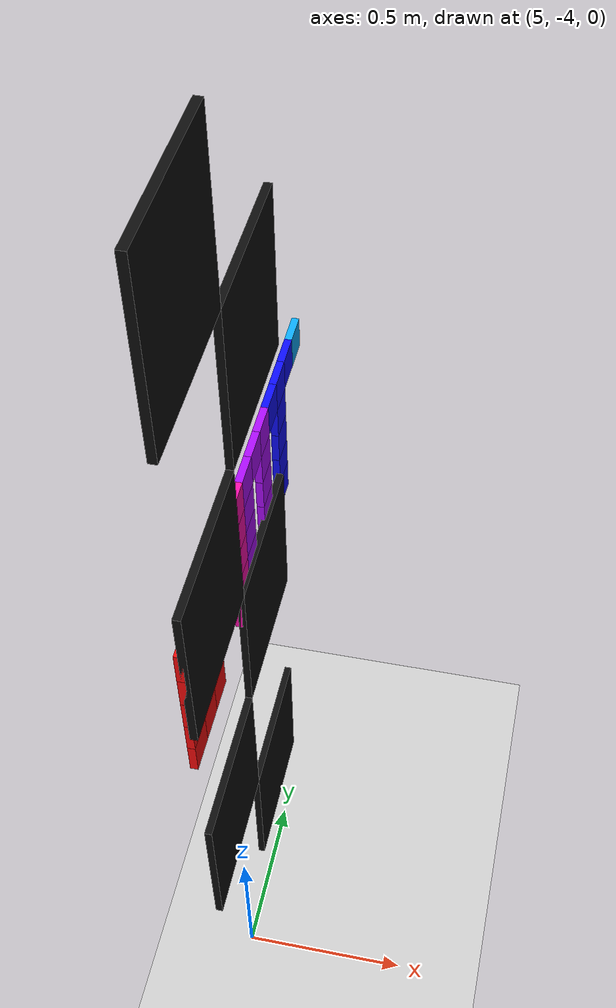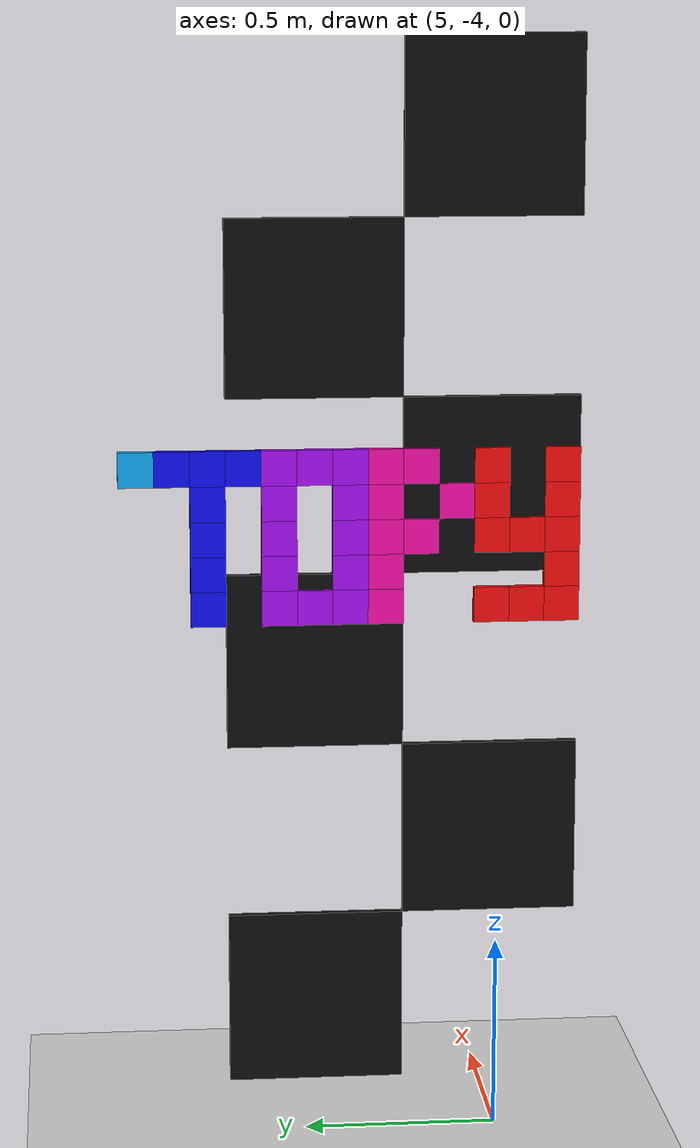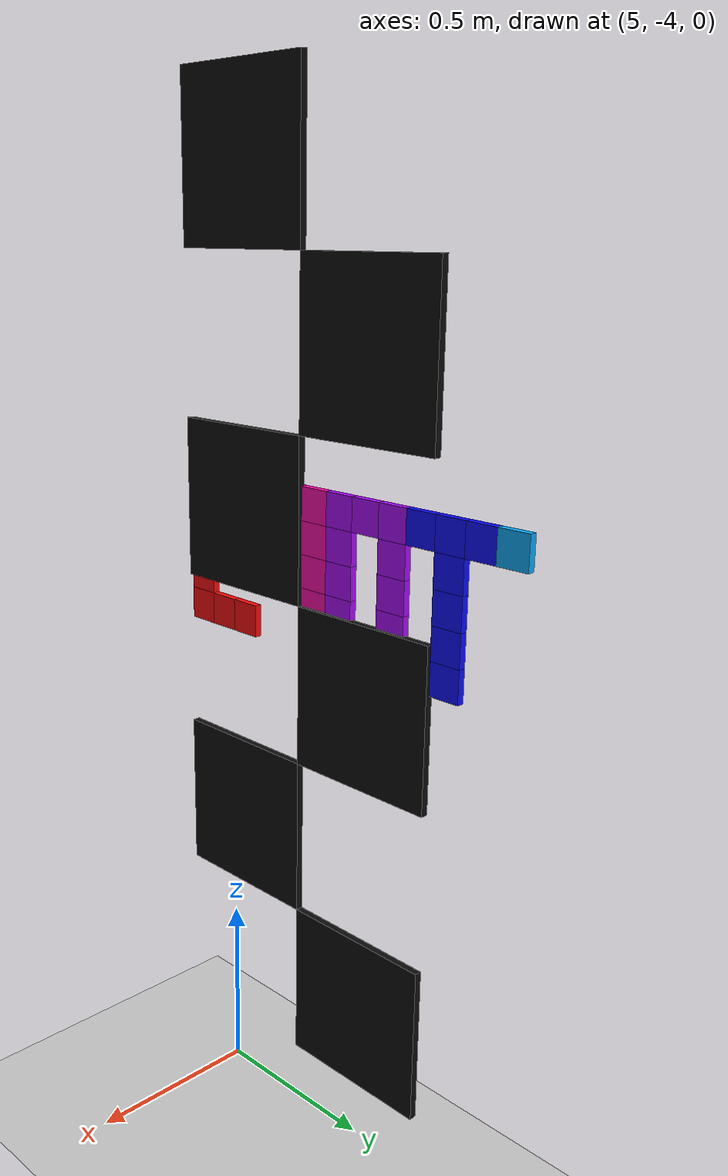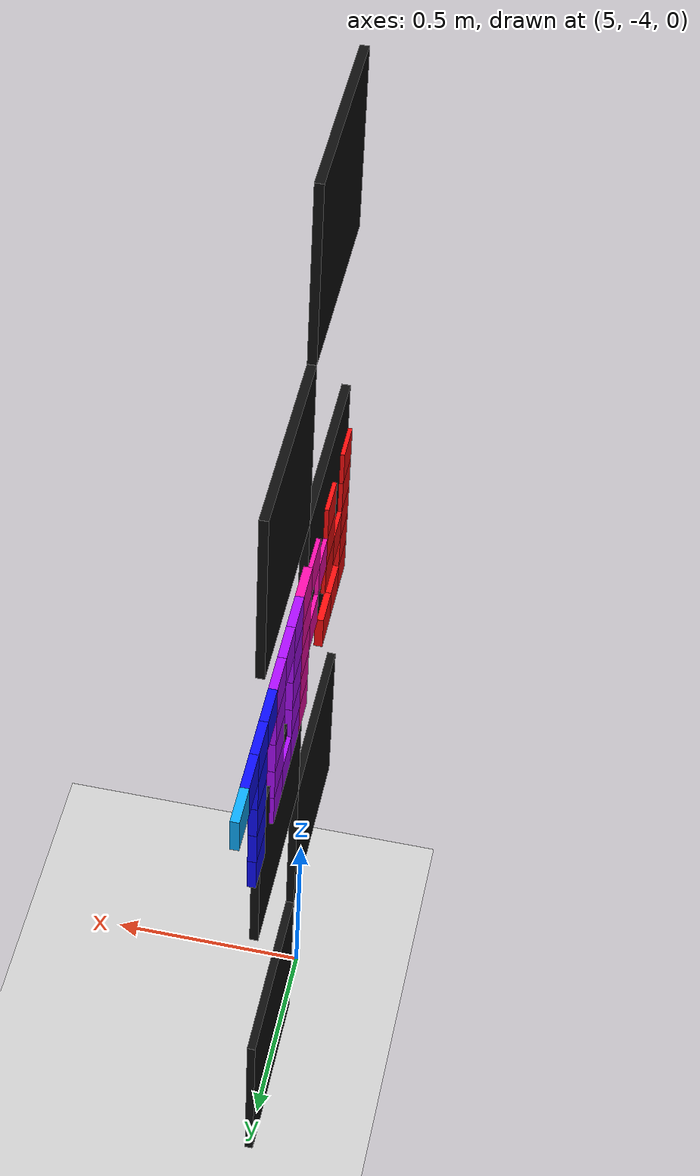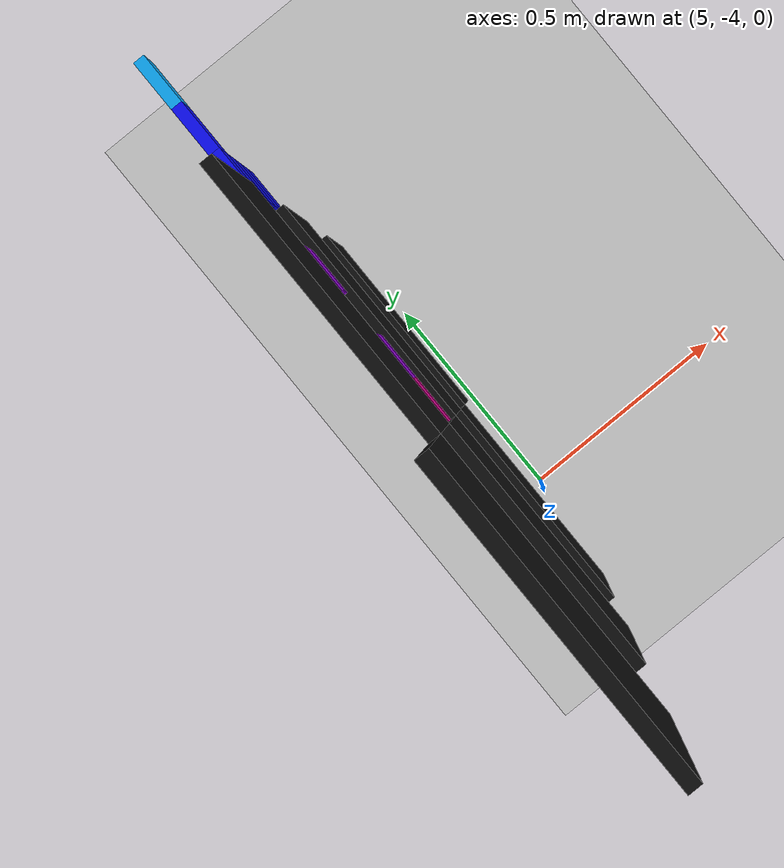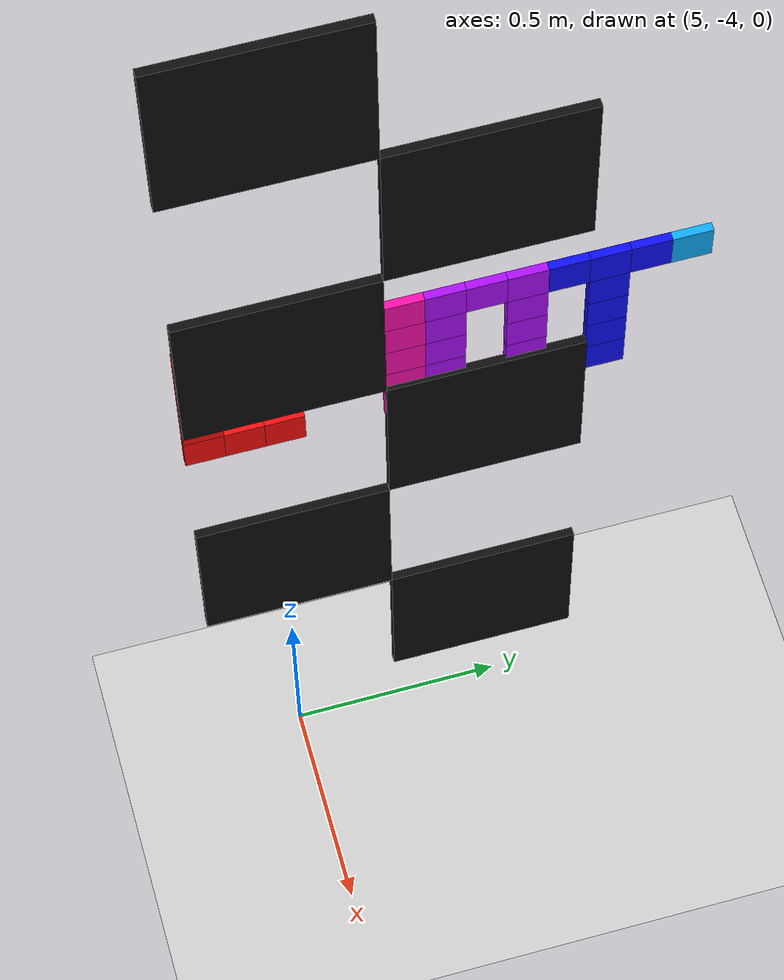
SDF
<sdf version="1.6">
 <world name="collab_workshop">
  <include><uri>model://ground_plane</uri></include>
  <include><uri>model://sun</uri></include>
  <model name="east_a_tile_0_1">
   <pose>4.98 -3.525 0.3749999999999999 0 0 0.0</pose>
   <static>true</static>
   <link name="link">
    <visual name="visual">
     <geometry><box><size>0.02 0.45 0.45</size></box></geometry>
     <material><ambient>0.05 0.05 0.05 1</ambient><diffuse>0.05 0.05 0.05 1</diffuse></material>
    </visual>
   </link>
  </model>
  <model name="east_a_tile_1_0">
   <pose>4.98 -3.975 0.8249999999999998 0 0 0.0</pose>
   <static>true</static>
   <link name="link">
    <visual name="visual">
     <geometry><box><size>0.02 0.45 0.45</size></box></geometry>
     <material><ambient>0.05 0.05 0.05 1</ambient><diffuse>0.05 0.05 0.05 1</diffuse></material>
    </visual>
   </link>
  </model>
  <model name="east_a_tile_2_1">
   <pose>4.98 -3.525 1.275 0 0 0.0</pose>
   <static>true</static>
   <link name="link">
    <visual name="visual">
     <geometry><box><size>0.02 0.45 0.45</size></box></geometry>
     <material><ambient>0.05 0.05 0.05 1</ambient><diffuse>0.05 0.05 0.05 1</diffuse></material>
    </visual>
   </link>
  </model>
  <model name="east_a_tile_3_0">
   <pose>4.98 -3.975 1.725 0 0 0.0</pose>
   <static>true</static>
   <link name="link">
    <visual name="visual">
     <geometry><box><size>0.02 0.45 0.45</size></box></geometry>
     <material><ambient>0.05 0.05 0.05 1</ambient><diffuse>0.05 0.05 0.05 1</diffuse></material>
    </visual>
   </link>
  </model>
  <model name="east_a_tile_4_1">
   <pose>4.98 -3.525 2.175 0 0 0.0</pose>
   <static>true</static>
   <link name="link">
    <visual name="visual">
     <geometry><box><size>0.02 0.45 0.45</size></box></geometry>
     <material><ambient>0.05 0.05 0.05 1</ambient><diffuse>0.05 0.05 0.05 1</diffuse></material>
    </visual>
   </link>
  </model>
  <model name="east_a_tile_5_0">
   <pose>4.98 -3.975 2.625 0 0 0.0</pose>
   <static>true</static>
   <link name="link">
    <visual name="visual">
     <geometry><box><size>0.02 0.45 0.45</size></box></geometry>
     <material><ambient>0.05 0.05 0.05 1</ambient><diffuse>0.05 0.05 0.05 1</diffuse></material>
    </visual>
   </link>
  </model>
  <model name="lab_letter_5_0_2">
   <pose>4.97 -3.075 1.775 0 0 0.0</pose>
   <static>true</static>
   <link name="link">
    <visual name="visual">
     <geometry><box><size>0.02 0.09 0.09</size></box></geometry>
     <material><ambient>0.049 0.67 0.98 1</ambient><diffuse>0.049 0.67 0.98 1</diffuse></material>
    </visual>
   </link>
  </model>
  <model name="lab_letter_6_0_0">
   <pose>4.97 -3.165 1.775 0 0 0.0</pose>
   <static>true</static>
   <link name="link">
    <visual name="visual">
     <geometry><box><size>0.02 0.09 0.09</size></box></geometry>
     <material><ambient>0.049 0.049 0.98 1</ambient><diffuse>0.049 0.049 0.98 1</diffuse></material>
    </visual>
   </link>
  </model>
  <model name="lab_letter_6_0_1">
   <pose>4.97 -3.255 1.775 0 0 0.0</pose>
   <static>true</static>
   <link name="link">
    <visual name="visual">
     <geometry><box><size>0.02 0.09 0.09</size></box></geometry>
     <material><ambient>0.049 0.049 0.98 1</ambient><diffuse>0.049 0.049 0.98 1</diffuse></material>
    </visual>
   </link>
  </model>
  <model name="lab_letter_6_0_2">
   <pose>4.97 -3.3449999999999998 1.775 0 0 0.0</pose>
   <static>true</static>
   <link name="link">
    <visual name="visual">
     <geometry><box><size>0.02 0.09 0.09</size></box></geometry>
     <material><ambient>0.049 0.049 0.98 1</ambient><diffuse>0.049 0.049 0.98 1</diffuse></material>
    </visual>
   </link>
  </model>
  <model name="lab_letter_6_1_1">
   <pose>4.97 -3.255 1.685 0 0 0.0</pose>
   <static>true</static>
   <link name="link">
    <visual name="visual">
     <geometry><box><size>0.02 0.09 0.09</size></box></geometry>
     <material><ambient>0.049 0.049 0.98 1</ambient><diffuse>0.049 0.049 0.98 1</diffuse></material>
    </visual>
   </link>
  </model>
  <model name="lab_letter_6_2_1">
   <pose>4.97 -3.255 1.595 0 0 0.0</pose>
   <static>true</static>
   <link name="link">
    <visual name="visual">
     <geometry><box><size>0.02 0.09 0.09</size></box></geometry>
     <material><ambient>0.049 0.049 0.98 1</ambient><diffuse>0.049 0.049 0.98 1</diffuse></material>
    </visual>
   </link>
  </model>
  <model name="lab_letter_6_3_1">
   <pose>4.97 -3.255 1.505 0 0 0.0</pose>
   <static>true</static>
   <link name="link">
    <visual name="visual">
     <geometry><box><size>0.02 0.09 0.09</size></box></geometry>
     <material><ambient>0.049 0.049 0.98 1</ambient><diffuse>0.049 0.049 0.98 1</diffuse></material>
    </visual>
   </link>
  </model>
  <model name="lab_letter_6_4_1">
   <pose>4.97 -3.255 1.415 0 0 0.0</pose>
   <static>true</static>
   <link name="link">
    <visual name="visual">
     <geometry><box><size>0.02 0.09 0.09</size></box></geometry>
     <material><ambient>0.049 0.049 0.98 1</ambient><diffuse>0.049 0.049 0.98 1</diffuse></material>
    </visual>
   </link>
  </model>
  <model name="lab_letter_7_0_0">
   <pose>4.97 -3.435 1.775 0 0 0.0</pose>
   <static>true</static>
   <link name="link">
    <visual name="visual">
     <geometry><box><size>0.02 0.09 0.09</size></box></geometry>
     <material><ambient>0.67 0.049 0.98 1</ambient><diffuse>0.67 0.049 0.98 1</diffuse></material>
    </visual>
   </link>
  </model>
  <model name="lab_letter_7_0_1">
   <pose>4.97 -3.5250000000000004 1.775 0 0 0.0</pose>
   <static>true</static>
   <link name="link">
    <visual name="visual">
     <geometry><box><size>0.02 0.09 0.09</size></box></geometry>
     <material><ambient>0.67 0.049 0.98 1</ambient><diffuse>0.67 0.049 0.98 1</diffuse></material>
    </visual>
   </link>
  </model>
  <model name="lab_letter_7_0_2">
   <pose>4.97 -3.615 1.775 0 0 0.0</pose>
   <static>true</static>
   <link name="link">
    <visual name="visual">
     <geometry><box><size>0.02 0.09 0.09</size></box></geometry>
     <material><ambient>0.67 0.049 0.98 1</ambient><diffuse>0.67 0.049 0.98 1</diffuse></material>
    </visual>
   </link>
  </model>
  <model name="lab_letter_7_1_0">
   <pose>4.97 -3.435 1.685 0 0 0.0</pose>
   <static>true</static>
   <link name="link">
    <visual name="visual">
     <geometry><box><size>0.02 0.09 0.09</size></box></geometry>
     <material><ambient>0.67 0.049 0.98 1</ambient><diffuse>0.67 0.049 0.98 1</diffuse></material>
    </visual>
   </link>
  </model>
  <model name="lab_letter_7_1_2">
   <pose>4.97 -3.615 1.685 0 0 0.0</pose>
   <static>true</static>
   <link name="link">
    <visual name="visual">
     <geometry><box><size>0.02 0.09 0.09</size></box></geometry>
     <material><ambient>0.67 0.049 0.98 1</ambient><diffuse>0.67 0.049 0.98 1</diffuse></material>
    </visual>
   </link>
  </model>
  <model name="lab_letter_7_2_0">
   <pose>4.97 -3.435 1.595 0 0 0.0</pose>
   <static>true</static>
   <link name="link">
    <visual name="visual">
     <geometry><box><size>0.02 0.09 0.09</size></box></geometry>
     <material><ambient>0.67 0.049 0.98 1</ambient><diffuse>0.67 0.049 0.98 1</diffuse></material>
    </visual>
   </link>
  </model>
  <model name="lab_letter_7_2_2">
   <pose>4.97 -3.615 1.595 0 0 0.0</pose>
   <static>true</static>
   <link name="link">
    <visual name="visual">
     <geometry><box><size>0.02 0.09 0.09</size></box></geometry>
     <material><ambient>0.67 0.049 0.98 1</ambient><diffuse>0.67 0.049 0.98 1</diffuse></material>
    </visual>
   </link>
  </model>
  <model name="lab_letter_7_3_0">
   <pose>4.97 -3.435 1.505 0 0 0.0</pose>
   <static>true</static>
   <link name="link">
    <visual name="visual">
     <geometry><box><size>0.02 0.09 0.09</size></box></geometry>
     <material><ambient>0.67 0.049 0.98 1</ambient><diffuse>0.67 0.049 0.98 1</diffuse></material>
    </visual>
   </link>
  </model>
  <model name="lab_letter_7_3_2">
   <pose>4.97 -3.615 1.505 0 0 0.0</pose>
   <static>true</static>
   <link name="link">
    <visual name="visual">
     <geometry><box><size>0.02 0.09 0.09</size></box></geometry>
     <material><ambient>0.67 0.049 0.98 1</ambient><diffuse>0.67 0.049 0.98 1</diffuse></material>
    </visual>
   </link>
  </model>
  <model name="lab_letter_7_4_0">
   <pose>4.97 -3.435 1.415 0 0 0.0</pose>
   <static>true</static>
   <link name="link">
    <visual name="visual">
     <geometry><box><size>0.02 0.09 0.09</size></box></geometry>
     <material><ambient>0.67 0.049 0.98 1</ambient><diffuse>0.67 0.049 0.98 1</diffuse></material>
    </visual>
   </link>
  </model>
  <model name="lab_letter_7_4_1">
   <pose>4.97 -3.5250000000000004 1.415 0 0 0.0</pose>
   <static>true</static>
   <link name="link">
    <visual name="visual">
     <geometry><box><size>0.02 0.09 0.09</size></box></geometry>
     <material><ambient>0.67 0.049 0.98 1</ambient><diffuse>0.67 0.049 0.98 1</diffuse></material>
    </visual>
   </link>
  </model>
  <model name="lab_letter_7_4_2">
   <pose>4.97 -3.615 1.415 0 0 0.0</pose>
   <static>true</static>
   <link name="link">
    <visual name="visual">
     <geometry><box><size>0.02 0.09 0.09</size></box></geometry>
     <material><ambient>0.67 0.049 0.98 1</ambient><diffuse>0.67 0.049 0.98 1</diffuse></material>
    </visual>
   </link>
  </model>
  <model name="lab_letter_8_0_0">
   <pose>4.97 -3.705 1.775 0 0 0.0</pose>
   <static>true</static>
   <link name="link">
    <visual name="visual">
     <geometry><box><size>0.02 0.09 0.09</size></box></geometry>
     <material><ambient>0.98 0.049 0.67 1</ambient><diffuse>0.98 0.049 0.67 1</diffuse></material>
    </visual>
   </link>
  </model>
  <model name="lab_letter_8_0_1">
   <pose>4.97 -3.795 1.775 0 0 0.0</pose>
   <static>true</static>
   <link name="link">
    <visual name="visual">
     <geometry><box><size>0.02 0.09 0.09</size></box></geometry>
     <material><ambient>0.98 0.049 0.67 1</ambient><diffuse>0.98 0.049 0.67 1</diffuse></material>
    </visual>
   </link>
  </model>
  <model name="lab_letter_8_1_0">
   <pose>4.97 -3.705 1.685 0 0 0.0</pose>
   <static>true</static>
   <link name="link">
    <visual name="visual">
     <geometry><box><size>0.02 0.09 0.09</size></box></geometry>
     <material><ambient>0.98 0.049 0.67 1</ambient><diffuse>0.98 0.049 0.67 1</diffuse></material>
    </visual>
   </link>
  </model>
  <model name="lab_letter_8_1_2">
   <pose>4.97 -3.8850000000000007 1.685 0 0 0.0</pose>
   <static>true</static>
   <link name="link">
    <visual name="visual">
     <geometry><box><size>0.02 0.09 0.09</size></box></geometry>
     <material><ambient>0.98 0.049 0.67 1</ambient><diffuse>0.98 0.049 0.67 1</diffuse></material>
    </visual>
   </link>
  </model>
  <model name="lab_letter_8_2_0">
   <pose>4.97 -3.705 1.595 0 0 0.0</pose>
   <static>true</static>
   <link name="link">
    <visual name="visual">
     <geometry><box><size>0.02 0.09 0.09</size></box></geometry>
     <material><ambient>0.98 0.049 0.67 1</ambient><diffuse>0.98 0.049 0.67 1</diffuse></material>
    </visual>
   </link>
  </model>
  <model name="lab_letter_8_2_1">
   <pose>4.97 -3.795 1.595 0 0 0.0</pose>
   <static>true</static>
   <link name="link">
    <visual name="visual">
     <geometry><box><size>0.02 0.09 0.09</size></box></geometry>
     <material><ambient>0.98 0.049 0.67 1</ambient><diffuse>0.98 0.049 0.67 1</diffuse></material>
    </visual>
   </link>
  </model>
  <model name="lab_letter_8_3_0">
   <pose>4.97 -3.705 1.505 0 0 0.0</pose>
   <static>true</static>
   <link name="link">
    <visual name="visual">
     <geometry><box><size>0.02 0.09 0.09</size></box></geometry>
     <material><ambient>0.98 0.049 0.67 1</ambient><diffuse>0.98 0.049 0.67 1</diffuse></material>
    </visual>
   </link>
  </model>
  <model name="lab_letter_8_4_0">
   <pose>4.97 -3.705 1.415 0 0 0.0</pose>
   <static>true</static>
   <link name="link">
    <visual name="visual">
     <geometry><box><size>0.02 0.09 0.09</size></box></geometry>
     <material><ambient>0.98 0.049 0.67 1</ambient><diffuse>0.98 0.049 0.67 1</diffuse></material>
    </visual>
   </link>
  </model>
  <model name="lab_letter_9_0_0">
   <pose>4.97 -3.9749999999999996 1.775 0 0 0.0</pose>
   <static>true</static>
   <link name="link">
    <visual name="visual">
     <geometry><box><size>0.02 0.09 0.09</size></box></geometry>
     <material><ambient>0.98 0.049 0.049 1</ambient><diffuse>0.98 0.049 0.049 1</diffuse></material>
    </visual>
   </link>
  </model>
  <model name="lab_letter_9_0_2">
   <pose>4.97 -4.155 1.775 0 0 0.0</pose>
   <static>true</static>
   <link name="link">
    <visual name="visual">
     <geometry><box><size>0.02 0.09 0.09</size></box></geometry>
     <material><ambient>0.98 0.049 0.049 1</ambient><diffuse>0.98 0.049 0.049 1</diffuse></material>
    </visual>
   </link>
  </model>
  <model name="lab_letter_9_1_0">
   <pose>4.97 -3.9749999999999996 1.685 0 0 0.0</pose>
   <static>true</static>
   <link name="link">
    <visual name="visual">
     <geometry><box><size>0.02 0.09 0.09</size></box></geometry>
     <material><ambient>0.98 0.049 0.049 1</ambient><diffuse>0.98 0.049 0.049 1</diffuse></material>
    </visual>
   </link>
  </model>
  <model name="lab_letter_9_1_2">
   <pose>4.97 -4.155 1.685 0 0 0.0</pose>
   <static>true</static>
   <link name="link">
    <visual name="visual">
     <geometry><box><size>0.02 0.09 0.09</size></box></geometry>
     <material><ambient>0.98 0.049 0.049 1</ambient><diffuse>0.98 0.049 0.049 1</diffuse></material>
    </visual>
   </link>
  </model>
  <model name="lab_letter_9_2_0">
   <pose>4.97 -3.9749999999999996 1.595 0 0 0.0</pose>
   <static>true</static>
   <link name="link">
    <visual name="visual">
     <geometry><box><size>0.02 0.09 0.09</size></box></geometry>
     <material><ambient>0.98 0.049 0.049 1</ambient><diffuse>0.98 0.049 0.049 1</diffuse></material>
    </visual>
   </link>
  </model>
  <model name="lab_letter_9_2_1">
   <pose>4.97 -4.0649999999999995 1.595 0 0 0.0</pose>
   <static>true</static>
   <link name="link">
    <visual name="visual">
     <geometry><box><size>0.02 0.09 0.09</size></box></geometry>
     <material><ambient>0.98 0.049 0.049 1</ambient><diffuse>0.98 0.049 0.049 1</diffuse></material>
    </visual>
   </link>
  </model>
  <model name="lab_letter_9_2_2">
   <pose>4.97 -4.155 1.595 0 0 0.0</pose>
   <static>true</static>
   <link name="link">
    <visual name="visual">
     <geometry><box><size>0.02 0.09 0.09</size></box></geometry>
     <material><ambient>0.98 0.049 0.049 1</ambient><diffuse>0.98 0.049 0.049 1</diffuse></material>
    </visual>
   </link>
  </model>
  <model name="lab_letter_9_3_2">
   <pose>4.97 -4.155 1.505 0 0 0.0</pose>
   <static>true</static>
   <link name="link">
    <visual name="visual">
     <geometry><box><size>0.02 0.09 0.09</size></box></geometry>
     <material><ambient>0.98 0.049 0.049 1</ambient><diffuse>0.98 0.049 0.049 1</diffuse></material>
    </visual>
   </link>
  </model>
  <model name="lab_letter_9_4_0">
   <pose>4.97 -3.9749999999999996 1.415 0 0 0.0</pose>
   <static>true</static>
   <link name="link">
    <visual name="visual">
     <geometry><box><size>0.02 0.09 0.09</size></box></geometry>
     <material><ambient>0.98 0.049 0.049 1</ambient><diffuse>0.98 0.049 0.049 1</diffuse></material>
    </visual>
   </link>
  </model>
  <model name="lab_letter_9_4_1">
   <pose>4.97 -4.0649999999999995 1.415 0 0 0.0</pose>
   <static>true</static>
   <link name="link">
    <visual name="visual">
     <geometry><box><size>0.02 0.09 0.09</size></box></geometry>
     <material><ambient>0.98 0.049 0.049 1</ambient><diffuse>0.98 0.049 0.049 1</diffuse></material>
    </visual>
   </link>
  </model>
  <model name="lab_letter_9_4_2">
   <pose>4.97 -4.155 1.415 0 0 0.0</pose>
   <static>true</static>
   <link name="link">
    <visual name="visual">
     <geometry><box><size>0.02 0.09 0.09</size></box></geometry>
     <material><ambient>0.98 0.049 0.049 1</ambient><diffuse>0.98 0.049 0.049 1</diffuse></material>
    </visual>
   </link>
  </model>
 </world>
</sdf>
